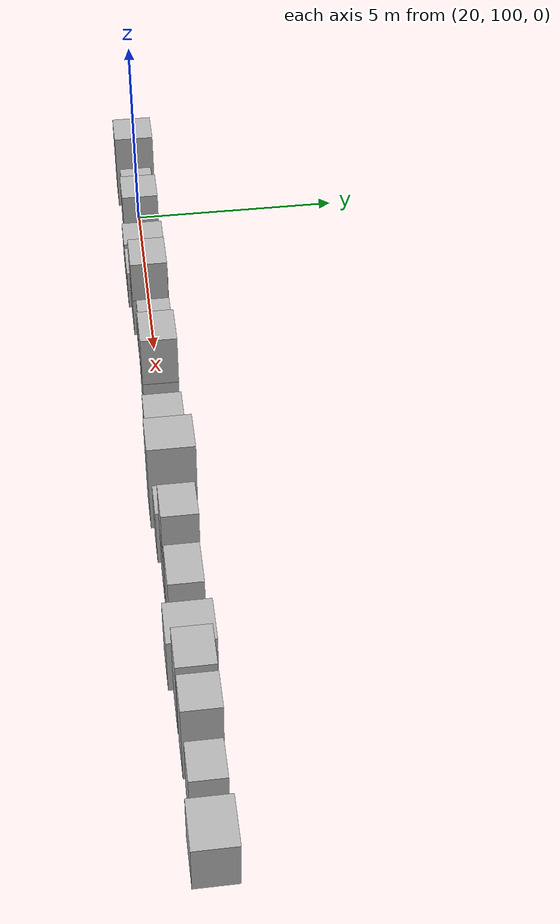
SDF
<sdf version="1.5">
 <world name="default">
  <model name="ground_plane">
   <static>true</static>
   <link name="link">
    <collision name="collision">
     <geometry><plane><normal>0 0 1</normal><size>250 250</size></plane></geometry>
     <surface><friction><ode><mu>1</mu><mu2>1</mu2></ode></friction></surface>
    </collision>
    <visual name="grass">
     <cast_shadows>false</cast_shadows>
     <geometry><mesh><uri>file://grass_plane/meshes/grass_plane.dae</uri></mesh></geometry>
    </visual>
   </link>
  </model>
  <model name="Cardboard_box_119">
   <link name="link_0">
    <pose>19 100 0 0 0 0</pose>
    <inertial>
     <mass>1</mass>
     <inertia>
      <ixx>0.166667</ixx>
      <ixy>0</ixy>
      <ixz>0</ixz>
      <iyy>0.166667</iyy>
      <iyz>0</iyz>
      <izz>0.166667</izz>
     </inertia>
    </inertial>
    <collision name="collision">
     <geometry>
      <mesh>
       <uri>model://Cardboard_box/meshes/cardboard_box.dae</uri>
       <scale>2.23439317608 2.38109159983 5.2089743312</scale>
      </mesh>
     </geometry>
    </collision>
    <visual name="visual">
     <geometry>
      <mesh>
       <uri>model://Cardboard_box/meshes/cardboard_box.dae</uri>
       <scale>2.23439317608 2.38109159983 5.2089743312</scale>
      </mesh>
     </geometry>
    </visual>
   </link>
   <static>1</static>
  </model>
  <model name="Cardboard_box_120">
   <link name="link_0">
    <pose>20 100 0 0 0 0</pose>
    <inertial>
     <mass>1</mass>
     <inertia>
      <ixx>0.166667</ixx>
      <ixy>0</ixy>
      <ixz>0</ixz>
      <iyy>0.166667</iyy>
      <iyz>0</iyz>
      <izz>0.166667</izz>
     </inertia>
    </inertial>
    <collision name="collision">
     <geometry>
      <mesh>
       <uri>model://Cardboard_box/meshes/cardboard_box.dae</uri>
       <scale>2.28229081486 1.96970826741 1.54401288132</scale>
      </mesh>
     </geometry>
    </collision>
    <visual name="visual">
     <geometry>
      <mesh>
       <uri>model://Cardboard_box/meshes/cardboard_box.dae</uri>
       <scale>2.28229081486 1.96970826741 1.54401288132</scale>
      </mesh>
     </geometry>
    </visual>
   </link>
   <static>1</static>
  </model>
  <model name="Cardboard_box_top_120">
   <link name="link_0">
    <pose>20 100 0.617605152529 0 0 0</pose>
    <inertial>
     <mass>1</mass>
     <inertia>
      <ixx>0.166667</ixx>
      <ixy>0</ixy>
      <ixz>0</ixz>
      <iyy>0.166667</iyy>
      <iyz>0</iyz>
      <izz>0.166667</izz>
     </inertia>
    </inertial>
    <collision name="collision">
     <geometry>
      <mesh>
       <uri>model://Cardboard_box/meshes/cardboard_box.dae</uri>
       <scale>2.28229081486 1.96970826741 1.54401288132</scale>
      </mesh>
     </geometry>
    </collision>
    <visual name="visual">
     <geometry>
      <mesh>
       <uri>model://Cardboard_box/meshes/cardboard_box.dae</uri>
       <scale>2.28229081486 1.96970826741 1.54401288132</scale>
      </mesh>
     </geometry>
    </visual>
   </link>
   <static>1</static>
  </model>
  <model name="Cardboard_box_121">
   <link name="link_0">
    <pose>21 100 0 0 0 0</pose>
    <inertial>
     <mass>1</mass>
     <inertia>
      <ixx>0.166667</ixx>
      <ixy>0</ixy>
      <ixz>0</ixz>
      <iyy>0.166667</iyy>
      <iyz>0</iyz>
      <izz>0.166667</izz>
     </inertia>
    </inertial>
    <collision name="collision">
     <geometry>
      <mesh>
       <uri>model://Cardboard_box/meshes/cardboard_box.dae</uri>
       <scale>2.19289267416 2.17522992428 4.41034512233</scale>
      </mesh>
     </geometry>
    </collision>
    <visual name="visual">
     <geometry>
      <mesh>
       <uri>model://Cardboard_box/meshes/cardboard_box.dae</uri>
       <scale>2.19289267416 2.17522992428 4.41034512233</scale>
      </mesh>
     </geometry>
    </visual>
   </link>
   <static>1</static>
  </model>
  <model name="Cardboard_box_122">
   <link name="link_0">
    <pose>22 100 0 0 0 0</pose>
    <inertial>
     <mass>1</mass>
     <inertia>
      <ixx>0.166667</ixx>
      <ixy>0</ixy>
      <ixz>0</ixz>
      <iyy>0.166667</iyy>
      <iyz>0</iyz>
      <izz>0.166667</izz>
     </inertia>
    </inertial>
    <collision name="collision">
     <geometry>
      <mesh>
       <uri>model://Cardboard_box/meshes/cardboard_box.dae</uri>
       <scale>2.08733727285 2.43421535264 1.36831143378</scale>
      </mesh>
     </geometry>
    </collision>
    <visual name="visual">
     <geometry>
      <mesh>
       <uri>model://Cardboard_box/meshes/cardboard_box.dae</uri>
       <scale>2.08733727285 2.43421535264 1.36831143378</scale>
      </mesh>
     </geometry>
    </visual>
   </link>
   <static>1</static>
  </model>
  <model name="Cardboard_box_top_122">
   <link name="link_0">
    <pose>22 100 0.547324573513 0 0 0</pose>
    <inertial>
     <mass>1</mass>
     <inertia>
      <ixx>0.166667</ixx>
      <ixy>0</ixy>
      <ixz>0</ixz>
      <iyy>0.166667</iyy>
      <iyz>0</iyz>
      <izz>0.166667</izz>
     </inertia>
    </inertial>
    <collision name="collision">
     <geometry>
      <mesh>
       <uri>model://Cardboard_box/meshes/cardboard_box.dae</uri>
       <scale>2.08733727285 2.43421535264 1.36831143378</scale>
      </mesh>
     </geometry>
    </collision>
    <visual name="visual">
     <geometry>
      <mesh>
       <uri>model://Cardboard_box/meshes/cardboard_box.dae</uri>
       <scale>2.08733727285 2.43421535264 1.36831143378</scale>
      </mesh>
     </geometry>
    </visual>
   </link>
   <static>1</static>
  </model>
  <model name="Cardboard_box_123">
   <link name="link_0">
    <pose>23 100 0 0 0 0</pose>
    <inertial>
     <mass>1</mass>
     <inertia>
      <ixx>0.166667</ixx>
      <ixy>0</ixy>
      <ixz>0</ixz>
      <iyy>0.166667</iyy>
      <iyz>0</iyz>
      <izz>0.166667</izz>
     </inertia>
    </inertial>
    <collision name="collision">
     <geometry>
      <mesh>
       <uri>model://Cardboard_box/meshes/cardboard_box.dae</uri>
       <scale>2.34571705139 2.42979519063 1.33652700981</scale>
      </mesh>
     </geometry>
    </collision>
    <visual name="visual">
     <geometry>
      <mesh>
       <uri>model://Cardboard_box/meshes/cardboard_box.dae</uri>
       <scale>2.34571705139 2.42979519063 1.33652700981</scale>
      </mesh>
     </geometry>
    </visual>
   </link>
   <static>1</static>
  </model>
  <model name="Cardboard_box_top_123">
   <link name="link_0">
    <pose>23 100 0.534610803925 0 0 0</pose>
    <inertial>
     <mass>1</mass>
     <inertia>
      <ixx>0.166667</ixx>
      <ixy>0</ixy>
      <ixz>0</ixz>
      <iyy>0.166667</iyy>
      <iyz>0</iyz>
      <izz>0.166667</izz>
     </inertia>
    </inertial>
    <collision name="collision">
     <geometry>
      <mesh>
       <uri>model://Cardboard_box/meshes/cardboard_box.dae</uri>
       <scale>2.34571705139 2.42979519063 1.33652700981</scale>
      </mesh>
     </geometry>
    </collision>
    <visual name="visual">
     <geometry>
      <mesh>
       <uri>model://Cardboard_box/meshes/cardboard_box.dae</uri>
       <scale>2.34571705139 2.42979519063 1.33652700981</scale>
      </mesh>
     </geometry>
    </visual>
   </link>
   <static>1</static>
  </model>
  <model name="Cardboard_box_124">
   <link name="link_0">
    <pose>24 100 0 0 0 0</pose>
    <inertial>
     <mass>1</mass>
     <inertia>
      <ixx>0.166667</ixx>
      <ixy>0</ixy>
      <ixz>0</ixz>
      <iyy>0.166667</iyy>
      <iyz>0</iyz>
      <izz>0.166667</izz>
     </inertia>
    </inertial>
    <collision name="collision">
     <geometry>
      <mesh>
       <uri>model://Cardboard_box/meshes/cardboard_box.dae</uri>
       <scale>2.34519523328 2.11383301586 2.68418463924</scale>
      </mesh>
     </geometry>
    </collision>
    <visual name="visual">
     <geometry>
      <mesh>
       <uri>model://Cardboard_box/meshes/cardboard_box.dae</uri>
       <scale>2.34519523328 2.11383301586 2.68418463924</scale>
      </mesh>
     </geometry>
    </visual>
   </link>
   <static>1</static>
  </model>
  <model name="Cardboard_box_top_124">
   <link name="link_0">
    <pose>24 100 1.0736738557 0 0 0</pose>
    <inertial>
     <mass>1</mass>
     <inertia>
      <ixx>0.166667</ixx>
      <ixy>0</ixy>
      <ixz>0</ixz>
      <iyy>0.166667</iyy>
      <iyz>0</iyz>
      <izz>0.166667</izz>
     </inertia>
    </inertial>
    <collision name="collision">
     <geometry>
      <mesh>
       <uri>model://Cardboard_box/meshes/cardboard_box.dae</uri>
       <scale>2.34519523328 2.11383301586 2.68418463924</scale>
      </mesh>
     </geometry>
    </collision>
    <visual name="visual">
     <geometry>
      <mesh>
       <uri>model://Cardboard_box/meshes/cardboard_box.dae</uri>
       <scale>2.34519523328 2.11383301586 2.68418463924</scale>
      </mesh>
     </geometry>
    </visual>
   </link>
   <static>1</static>
  </model>
  <model name="Cardboard_box_125">
   <link name="link_0">
    <pose>25 100 0 0 0 0</pose>
    <inertial>
     <mass>1</mass>
     <inertia>
      <ixx>0.166667</ixx>
      <ixy>0</ixy>
      <ixz>0</ixz>
      <iyy>0.166667</iyy>
      <iyz>0</iyz>
      <izz>0.166667</izz>
     </inertia>
    </inertial>
    <collision name="collision">
     <geometry>
      <mesh>
       <uri>model://Cardboard_box/meshes/cardboard_box.dae</uri>
       <scale>2.02854024804 1.8236989548 1.05689188208</scale>
      </mesh>
     </geometry>
    </collision>
    <visual name="visual">
     <geometry>
      <mesh>
       <uri>model://Cardboard_box/meshes/cardboard_box.dae</uri>
       <scale>2.02854024804 1.8236989548 1.05689188208</scale>
      </mesh>
     </geometry>
    </visual>
   </link>
   <static>1</static>
  </model>
  <model name="Cardboard_box_top_125">
   <link name="link_0">
    <pose>25 100 0.422756752833 0 0 0</pose>
    <inertial>
     <mass>1</mass>
     <inertia>
      <ixx>0.166667</ixx>
      <ixy>0</ixy>
      <ixz>0</ixz>
      <iyy>0.166667</iyy>
      <iyz>0</iyz>
      <izz>0.166667</izz>
     </inertia>
    </inertial>
    <collision name="collision">
     <geometry>
      <mesh>
       <uri>model://Cardboard_box/meshes/cardboard_box.dae</uri>
       <scale>2.02854024804 1.8236989548 1.05689188208</scale>
      </mesh>
     </geometry>
    </collision>
    <visual name="visual">
     <geometry>
      <mesh>
       <uri>model://Cardboard_box/meshes/cardboard_box.dae</uri>
       <scale>2.02854024804 1.8236989548 1.05689188208</scale>
      </mesh>
     </geometry>
    </visual>
   </link>
   <static>1</static>
  </model>
  <model name="Cardboard_box_126">
   <link name="link_0">
    <pose>26 100 0 0 0 0</pose>
    <inertial>
     <mass>1</mass>
     <inertia>
      <ixx>0.166667</ixx>
      <ixy>0</ixy>
      <ixz>0</ixz>
      <iyy>0.166667</iyy>
      <iyz>0</iyz>
      <izz>0.166667</izz>
     </inertia>
    </inertial>
    <collision name="collision">
     <geometry>
      <mesh>
       <uri>model://Cardboard_box/meshes/cardboard_box.dae</uri>
       <scale>1.75836338952 1.83496517302 5.34609133062</scale>
      </mesh>
     </geometry>
    </collision>
    <visual name="visual">
     <geometry>
      <mesh>
       <uri>model://Cardboard_box/meshes/cardboard_box.dae</uri>
       <scale>1.75836338952 1.83496517302 5.34609133062</scale>
      </mesh>
     </geometry>
    </visual>
   </link>
   <static>1</static>
  </model>
  <model name="Cardboard_box_127">
   <link name="link_0">
    <pose>27 100 0 0 0 0</pose>
    <inertial>
     <mass>1</mass>
     <inertia>
      <ixx>0.166667</ixx>
      <ixy>0</ixy>
      <ixz>0</ixz>
      <iyy>0.166667</iyy>
      <iyz>0</iyz>
      <izz>0.166667</izz>
     </inertia>
    </inertial>
    <collision name="collision">
     <geometry>
      <mesh>
       <uri>model://Cardboard_box/meshes/cardboard_box.dae</uri>
       <scale>2.36548325404 1.97922604667 3.19696033913</scale>
      </mesh>
     </geometry>
    </collision>
    <visual name="visual">
     <geometry>
      <mesh>
       <uri>model://Cardboard_box/meshes/cardboard_box.dae</uri>
       <scale>2.36548325404 1.97922604667 3.19696033913</scale>
      </mesh>
     </geometry>
    </visual>
   </link>
   <static>1</static>
  </model>
  <model name="Cardboard_box_top_127">
   <link name="link_0">
    <pose>27 100 1.27878413565 0 0 0</pose>
    <inertial>
     <mass>1</mass>
     <inertia>
      <ixx>0.166667</ixx>
      <ixy>0</ixy>
      <ixz>0</ixz>
      <iyy>0.166667</iyy>
      <iyz>0</iyz>
      <izz>0.166667</izz>
     </inertia>
    </inertial>
    <collision name="collision">
     <geometry>
      <mesh>
       <uri>model://Cardboard_box/meshes/cardboard_box.dae</uri>
       <scale>2.36548325404 1.97922604667 3.19696033913</scale>
      </mesh>
     </geometry>
    </collision>
    <visual name="visual">
     <geometry>
      <mesh>
       <uri>model://Cardboard_box/meshes/cardboard_box.dae</uri>
       <scale>2.36548325404 1.97922604667 3.19696033913</scale>
      </mesh>
     </geometry>
    </visual>
   </link>
   <static>1</static>
  </model>
  <model name="Cardboard_box_128">
   <link name="link_0">
    <pose>28 100 0 0 0 0</pose>
    <inertial>
     <mass>1</mass>
     <inertia>
      <ixx>0.166667</ixx>
      <ixy>0</ixy>
      <ixz>0</ixz>
      <iyy>0.166667</iyy>
      <iyz>0</iyz>
      <izz>0.166667</izz>
     </inertia>
    </inertial>
    <collision name="collision">
     <geometry>
      <mesh>
       <uri>model://Cardboard_box/meshes/cardboard_box.dae</uri>
       <scale>2.36568682189 2.16788203519 1.29111041792</scale>
      </mesh>
     </geometry>
    </collision>
    <visual name="visual">
     <geometry>
      <mesh>
       <uri>model://Cardboard_box/meshes/cardboard_box.dae</uri>
       <scale>2.36568682189 2.16788203519 1.29111041792</scale>
      </mesh>
     </geometry>
    </visual>
   </link>
   <static>1</static>
  </model>
  <model name="Cardboard_box_top_128">
   <link name="link_0">
    <pose>28 100 0.516444167167 0 0 0</pose>
    <inertial>
     <mass>1</mass>
     <inertia>
      <ixx>0.166667</ixx>
      <ixy>0</ixy>
      <ixz>0</ixz>
      <iyy>0.166667</iyy>
      <iyz>0</iyz>
      <izz>0.166667</izz>
     </inertia>
    </inertial>
    <collision name="collision">
     <geometry>
      <mesh>
       <uri>model://Cardboard_box/meshes/cardboard_box.dae</uri>
       <scale>2.36568682189 2.16788203519 1.29111041792</scale>
      </mesh>
     </geometry>
    </collision>
    <visual name="visual">
     <geometry>
      <mesh>
       <uri>model://Cardboard_box/meshes/cardboard_box.dae</uri>
       <scale>2.36568682189 2.16788203519 1.29111041792</scale>
      </mesh>
     </geometry>
    </visual>
   </link>
   <static>1</static>
  </model>
  <model name="Cardboard_box_129">
   <link name="link_0">
    <pose>29 100 0 0 0 0</pose>
    <inertial>
     <mass>1</mass>
     <inertia>
      <ixx>0.166667</ixx>
      <ixy>0</ixy>
      <ixz>0</ixz>
      <iyy>0.166667</iyy>
      <iyz>0</iyz>
      <izz>0.166667</izz>
     </inertia>
    </inertial>
    <collision name="collision">
     <geometry>
      <mesh>
       <uri>model://Cardboard_box/meshes/cardboard_box.dae</uri>
       <scale>1.75073190978 1.89166585203 1.66335644163</scale>
      </mesh>
     </geometry>
    </collision>
    <visual name="visual">
     <geometry>
      <mesh>
       <uri>model://Cardboard_box/meshes/cardboard_box.dae</uri>
       <scale>1.75073190978 1.89166585203 1.66335644163</scale>
      </mesh>
     </geometry>
    </visual>
   </link>
   <static>1</static>
  </model>
  <model name="Cardboard_box_top_129">
   <link name="link_0">
    <pose>29 100 0.665342576652 0 0 0</pose>
    <inertial>
     <mass>1</mass>
     <inertia>
      <ixx>0.166667</ixx>
      <ixy>0</ixy>
      <ixz>0</ixz>
      <iyy>0.166667</iyy>
      <iyz>0</iyz>
      <izz>0.166667</izz>
     </inertia>
    </inertial>
    <collision name="collision">
     <geometry>
      <mesh>
       <uri>model://Cardboard_box/meshes/cardboard_box.dae</uri>
       <scale>1.75073190978 1.89166585203 1.66335644163</scale>
      </mesh>
     </geometry>
    </collision>
    <visual name="visual">
     <geometry>
      <mesh>
       <uri>model://Cardboard_box/meshes/cardboard_box.dae</uri>
       <scale>1.75073190978 1.89166585203 1.66335644163</scale>
      </mesh>
     </geometry>
    </visual>
   </link>
   <static>1</static>
  </model>
  <model name="Cardboard_box_130">
   <link name="link_0">
    <pose>30 100 0 0 0 0</pose>
    <inertial>
     <mass>1</mass>
     <inertia>
      <ixx>0.166667</ixx>
      <ixy>0</ixy>
      <ixz>0</ixz>
      <iyy>0.166667</iyy>
      <iyz>0</iyz>
      <izz>0.166667</izz>
     </inertia>
    </inertial>
    <collision name="collision">
     <geometry>
      <mesh>
       <uri>model://Cardboard_box/meshes/cardboard_box.dae</uri>
       <scale>2.26499675364 2.49086024011 5.97296482399</scale>
      </mesh>
     </geometry>
    </collision>
    <visual name="visual">
     <geometry>
      <mesh>
       <uri>model://Cardboard_box/meshes/cardboard_box.dae</uri>
       <scale>2.26499675364 2.49086024011 5.97296482399</scale>
      </mesh>
     </geometry>
    </visual>
   </link>
   <static>1</static>
  </model>
  <model name="Cardboard_box_131">
   <link name="link_0">
    <pose>31 100 0 0 0 0</pose>
    <inertial>
     <mass>1</mass>
     <inertia>
      <ixx>0.166667</ixx>
      <ixy>0</ixy>
      <ixz>0</ixz>
      <iyy>0.166667</iyy>
      <iyz>0</iyz>
      <izz>0.166667</izz>
     </inertia>
    </inertial>
    <collision name="collision">
     <geometry>
      <mesh>
       <uri>model://Cardboard_box/meshes/cardboard_box.dae</uri>
       <scale>1.90016641799 2.15702072359 3.81088452346</scale>
      </mesh>
     </geometry>
    </collision>
    <visual name="visual">
     <geometry>
      <mesh>
       <uri>model://Cardboard_box/meshes/cardboard_box.dae</uri>
       <scale>1.90016641799 2.15702072359 3.81088452346</scale>
      </mesh>
     </geometry>
    </visual>
   </link>
   <static>1</static>
  </model>
  <model name="Cardboard_box_132">
   <link name="link_0">
    <pose>32 100 0 0 0 0</pose>
    <inertial>
     <mass>1</mass>
     <inertia>
      <ixx>0.166667</ixx>
      <ixy>0</ixy>
      <ixz>0</ixz>
      <iyy>0.166667</iyy>
      <iyz>0</iyz>
      <izz>0.166667</izz>
     </inertia>
    </inertial>
    <collision name="collision">
     <geometry>
      <mesh>
       <uri>model://Cardboard_box/meshes/cardboard_box.dae</uri>
       <scale>2.04811511199 1.83982850412 3.28619340429</scale>
      </mesh>
     </geometry>
    </collision>
    <visual name="visual">
     <geometry>
      <mesh>
       <uri>model://Cardboard_box/meshes/cardboard_box.dae</uri>
       <scale>2.04811511199 1.83982850412 3.28619340429</scale>
      </mesh>
     </geometry>
    </visual>
   </link>
   <static>1</static>
  </model>
  <model name="Cardboard_box_top_132">
   <link name="link_0">
    <pose>32 100 1.31447736172 0 0 0</pose>
    <inertial>
     <mass>1</mass>
     <inertia>
      <ixx>0.166667</ixx>
      <ixy>0</ixy>
      <ixz>0</ixz>
      <iyy>0.166667</iyy>
      <iyz>0</iyz>
      <izz>0.166667</izz>
     </inertia>
    </inertial>
    <collision name="collision">
     <geometry>
      <mesh>
       <uri>model://Cardboard_box/meshes/cardboard_box.dae</uri>
       <scale>2.04811511199 1.83982850412 3.28619340429</scale>
      </mesh>
     </geometry>
    </collision>
    <visual name="visual">
     <geometry>
      <mesh>
       <uri>model://Cardboard_box/meshes/cardboard_box.dae</uri>
       <scale>2.04811511199 1.83982850412 3.28619340429</scale>
      </mesh>
     </geometry>
    </visual>
   </link>
   <static>1</static>
  </model>
  <model name="Cardboard_box_133">
   <link name="link_0">
    <pose>33 100 0 0 0 0</pose>
    <inertial>
     <mass>1</mass>
     <inertia>
      <ixx>0.166667</ixx>
      <ixy>0</ixy>
      <ixz>0</ixz>
      <iyy>0.166667</iyy>
      <iyz>0</iyz>
      <izz>0.166667</izz>
     </inertia>
    </inertial>
    <collision name="collision">
     <geometry>
      <mesh>
       <uri>model://Cardboard_box/meshes/cardboard_box.dae</uri>
       <scale>2.3984016844 1.76175405134 4.88351144417</scale>
      </mesh>
     </geometry>
    </collision>
    <visual name="visual">
     <geometry>
      <mesh>
       <uri>model://Cardboard_box/meshes/cardboard_box.dae</uri>
       <scale>2.3984016844 1.76175405134 4.88351144417</scale>
      </mesh>
     </geometry>
    </visual>
   </link>
   <static>1</static>
  </model>
  <model name="Cardboard_box_134">
   <link name="link_0">
    <pose>34 100 0 0 0 0</pose>
    <inertial>
     <mass>1</mass>
     <inertia>
      <ixx>0.166667</ixx>
      <ixy>0</ixy>
      <ixz>0</ixz>
      <iyy>0.166667</iyy>
      <iyz>0</iyz>
      <izz>0.166667</izz>
     </inertia>
    </inertial>
    <collision name="collision">
     <geometry>
      <mesh>
       <uri>model://Cardboard_box/meshes/cardboard_box.dae</uri>
       <scale>2.35769767432 2.42471605129 3.75104697882</scale>
      </mesh>
     </geometry>
    </collision>
    <visual name="visual">
     <geometry>
      <mesh>
       <uri>model://Cardboard_box/meshes/cardboard_box.dae</uri>
       <scale>2.35769767432 2.42471605129 3.75104697882</scale>
      </mesh>
     </geometry>
    </visual>
   </link>
   <static>1</static>
  </model>
  <model name="Cardboard_box_135">
   <link name="link_0">
    <pose>35 100 0 0 0 0</pose>
    <inertial>
     <mass>1</mass>
     <inertia>
      <ixx>0.166667</ixx>
      <ixy>0</ixy>
      <ixz>0</ixz>
      <iyy>0.166667</iyy>
      <iyz>0</iyz>
      <izz>0.166667</izz>
     </inertia>
    </inertial>
    <collision name="collision">
     <geometry>
      <mesh>
       <uri>model://Cardboard_box/meshes/cardboard_box.dae</uri>
       <scale>2.20661791612 1.93340245682 5.30241744672</scale>
      </mesh>
     </geometry>
    </collision>
    <visual name="visual">
     <geometry>
      <mesh>
       <uri>model://Cardboard_box/meshes/cardboard_box.dae</uri>
       <scale>2.20661791612 1.93340245682 5.30241744672</scale>
      </mesh>
     </geometry>
    </visual>
   </link>
   <static>1</static>
  </model>
  <model name="Cardboard_box_136">
   <link name="link_0">
    <pose>36 100 0 0 0 0</pose>
    <inertial>
     <mass>1</mass>
     <inertia>
      <ixx>0.166667</ixx>
      <ixy>0</ixy>
      <ixz>0</ixz>
      <iyy>0.166667</iyy>
      <iyz>0</iyz>
      <izz>0.166667</izz>
     </inertia>
    </inertial>
    <collision name="collision">
     <geometry>
      <mesh>
       <uri>model://Cardboard_box/meshes/cardboard_box.dae</uri>
       <scale>1.91155840379 1.90989665884 5.46847774627</scale>
      </mesh>
     </geometry>
    </collision>
    <visual name="visual">
     <geometry>
      <mesh>
       <uri>model://Cardboard_box/meshes/cardboard_box.dae</uri>
       <scale>1.91155840379 1.90989665884 5.46847774627</scale>
      </mesh>
     </geometry>
    </visual>
   </link>
   <static>1</static>
  </model>
  <model name="Cardboard_box_137">
   <link name="link_0">
    <pose>37 100 0 0 0 0</pose>
    <inertial>
     <mass>1</mass>
     <inertia>
      <ixx>0.166667</ixx>
      <ixy>0</ixy>
      <ixz>0</ixz>
      <iyy>0.166667</iyy>
      <iyz>0</iyz>
      <izz>0.166667</izz>
     </inertia>
    </inertial>
    <collision name="collision">
     <geometry>
      <mesh>
       <uri>model://Cardboard_box/meshes/cardboard_box.dae</uri>
       <scale>1.9721582613 1.75367752019 4.02926075219</scale>
      </mesh>
     </geometry>
    </collision>
    <visual name="visual">
     <geometry>
      <mesh>
       <uri>model://Cardboard_box/meshes/cardboard_box.dae</uri>
       <scale>1.9721582613 1.75367752019 4.02926075219</scale>
      </mesh>
     </geometry>
    </visual>
   </link>
   <static>1</static>
  </model>
  <model name="Cardboard_box_138">
   <link name="link_0">
    <pose>38 100 0 0 0 0</pose>
    <inertial>
     <mass>1</mass>
     <inertia>
      <ixx>0.166667</ixx>
      <ixy>0</ixy>
      <ixz>0</ixz>
      <iyy>0.166667</iyy>
      <iyz>0</iyz>
      <izz>0.166667</izz>
     </inertia>
    </inertial>
    <collision name="collision">
     <geometry>
      <mesh>
       <uri>model://Cardboard_box/meshes/cardboard_box.dae</uri>
       <scale>2.47280669436 2.1447392296 3.2404015502</scale>
      </mesh>
     </geometry>
    </collision>
    <visual name="visual">
     <geometry>
      <mesh>
       <uri>model://Cardboard_box/meshes/cardboard_box.dae</uri>
       <scale>2.47280669436 2.1447392296 3.2404015502</scale>
      </mesh>
     </geometry>
    </visual>
   </link>
   <static>1</static>
  </model>
 </world>
</sdf>
